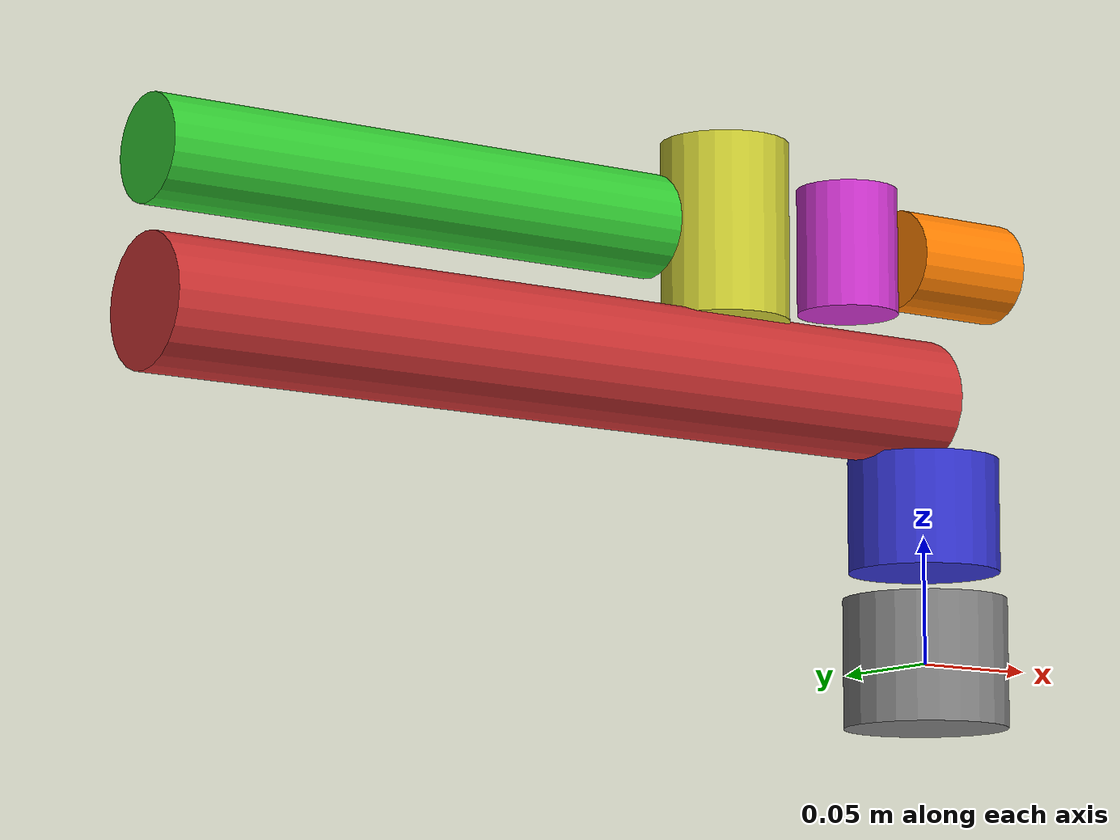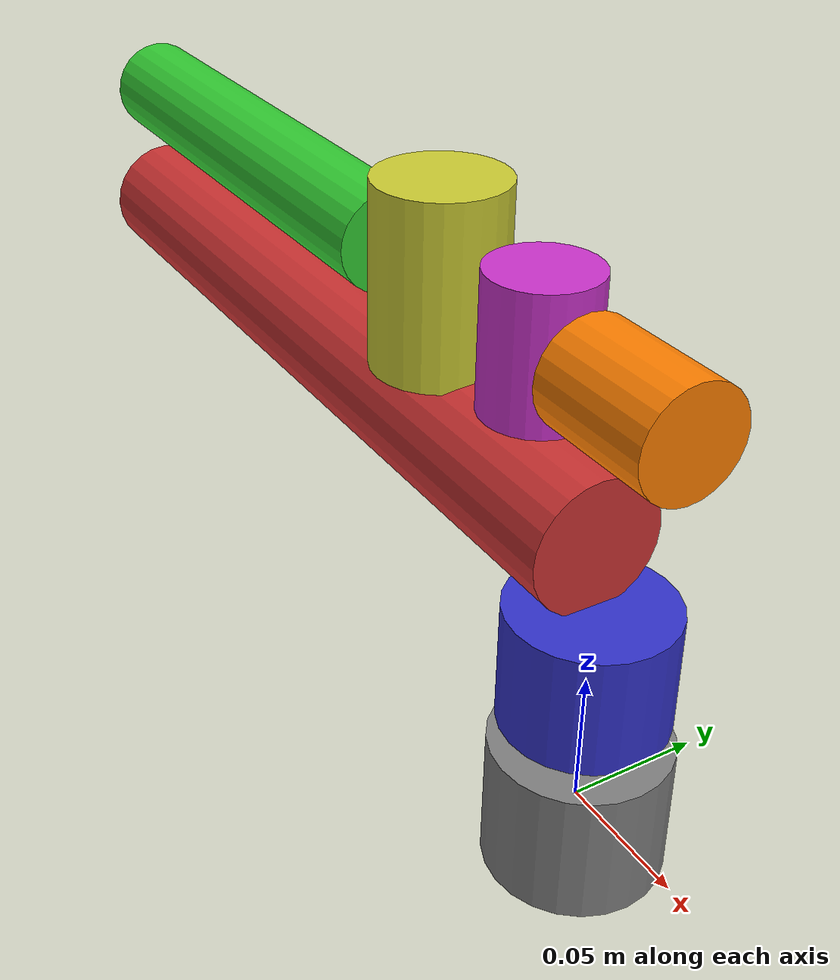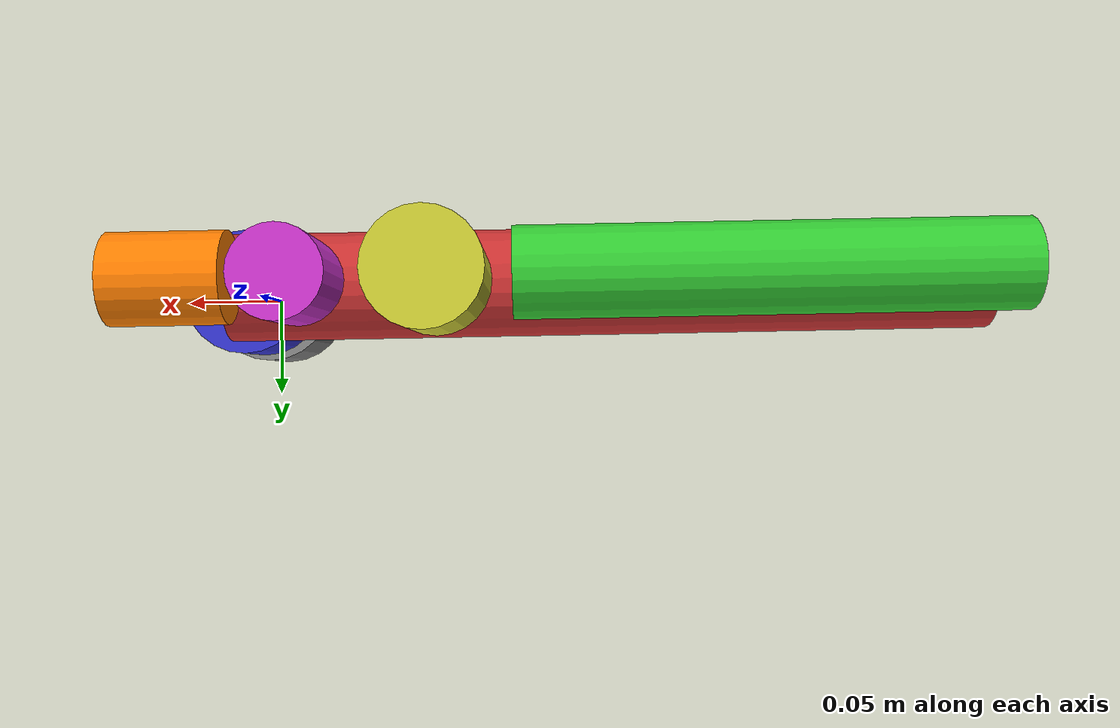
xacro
<?xml version="1.0"?>
<robot xmlns:xacro="http://www.ros.org/wiki/xacro" name="z1_description">

  <!-- ROS2 Control Plugin -->
  <gazebo>
    <plugin filename="libgazebo_ros2_control.so" name="gazebo_ros2_control">
      <parameters>$(find z1_ros2)/config/z1_controllers.yaml</parameters>
    </plugin>
  </gazebo>

  <!-- ROS2 Control Hardware Interface -->
  <ros2_control name="Z1HardwareInterface" type="system">
    <hardware>
      <plugin>gazebo_ros2_control/GazeboSystem</plugin>
    </hardware>

    <joint name="joint1">
      <command_interface name="position">
        <param name="min">-2.618</param>
        <param name="max">2.618</param>
      </command_interface>
      <command_interface name="velocity"/>
      <state_interface name="position"/>
      <state_interface name="velocity"/>
      <state_interface name="effort"/>
    </joint>

    <joint name="joint2">
      <command_interface name="position">
        <param name="min">0.0</param>
        <param name="max">2.967</param>
      </command_interface>
      <command_interface name="velocity"/>
      <state_interface name="position"/>
      <state_interface name="velocity"/>
      <state_interface name="effort"/>
    </joint>

    <joint name="joint3">
      <command_interface name="position">
        <param name="min">-2.88</param>
        <param name="max">0.0</param>
      </command_interface>
      <command_interface name="velocity"/>
      <state_interface name="position"/>
      <state_interface name="velocity"/>
      <state_interface name="effort"/>
    </joint>

    <joint name="joint4">
      <command_interface name="position">
        <param name="min">-1.518</param>
        <param name="max">1.518</param>
      </command_interface>
      <command_interface name="velocity"/>
      <state_interface name="position"/>
      <state_interface name="velocity"/>
      <state_interface name="effort"/>
    </joint>

    <joint name="joint5">
      <command_interface name="position">
        <param name="min">-1.344</param>
        <param name="max">1.344</param>
      </command_interface>
      <command_interface name="velocity"/>
      <state_interface name="position"/>
      <state_interface name="velocity"/>
      <state_interface name="effort"/>
    </joint>

    <joint name="joint6">
      <command_interface name="position">
        <param name="min">-2.793</param>
        <param name="max">2.793</param>
      </command_interface>
      <command_interface name="velocity"/>
      <state_interface name="position"/>
      <state_interface name="velocity"/>
      <state_interface name="effort"/>
    </joint>
  </ros2_control>

  <!-- Base Link -->
  <link name="world"/>
  <joint name="base_static_joint" type="fixed">
    <origin rpy="0 0 0" xyz="0 0 0"/>
    <parent link="world"/>
    <child link="link00"/>
  </joint>

  <!-- Link 00 -->
  <link name="link00">
    <visual>
      <origin rpy="0 0 0" xyz="0 0 0"/>
      <geometry>
        <cylinder length="0.051" radius="0.0325"/>
      </geometry>
      <material name="grey">
        <color rgba="0.5 0.5 0.5 1"/>
      </material>
    </visual>
    <collision>
      <geometry>
        <cylinder length="0.051" radius="0.0325"/>
      </geometry>
      <origin rpy="0 0 0" xyz="0 0 0.0255"/>
    </collision>
    <inertial>
      <origin rpy="0 0 0" xyz="-0.00334984 -0.00013615 0.02495843"/>
      <mass value="0.47247481"/>
      <inertia ixx="0.00037937" ixy="-3.5e-07" ixz="-1.037e-05" iyy="0.00041521" iyz="-9.9e-07" izz="0.00053066"/>
    </inertial>
  </link>

  <!-- Joint 1 -->
  <joint name="joint1" type="revolute">
    <origin rpy="0 0 0" xyz="0 0 0.0585"/>
    <parent link="link00"/>
    <child link="link01"/>
    <axis xyz="0 0 1"/>
    <dynamics damping="1.0" friction="1.0"/>
    <limit effort="30.0" lower="-2.618" upper="2.618" velocity="3.1415"/>
  </joint>

  <!-- Link 01 -->
  <link name="link01">
    <visual>
      <origin rpy="0 0 0" xyz="0 0 0"/>
      <geometry>
        <cylinder length="0.045" radius="0.03"/>
      </geometry>
      <material name="blue">
        <color rgba="0.2 0.2 0.8 1"/>
      </material>
    </visual>
    <inertial>
      <origin rpy="0 0 0" xyz="2.47e-06 -0.00025198 0.02317169"/>
      <mass value="0.67332551"/>
      <inertia ixx="0.00128328" ixy="-6e-08" ixz="-4e-07" iyy="0.00071931" iyz="5e-07" izz="0.00083936"/>
    </inertial>
  </link>

  <!-- Joint 2 -->
  <joint name="joint2" type="revolute">
    <origin rpy="0 0 0" xyz="0 0 0.045"/>
    <parent link="link01"/>
    <child link="link02"/>
    <axis xyz="0 1 0"/>
    <dynamics damping="2.0" friction="2.0"/>
    <limit effort="60.0" lower="0.0" upper="2.967" velocity="3.1415"/>
  </joint>

  <!-- Link 02 -->
  <link name="link02">
    <visual>
      <origin rpy="0 1.5708 0" xyz="-0.175 0 0"/>
      <geometry>
        <cylinder length="0.35" radius="0.025"/>
      </geometry>
      <material name="red">
        <color rgba="0.8 0.2 0.2 1"/>
      </material>
    </visual>
    <collision>
      <geometry>
        <cylinder length="0.35" radius="0.025"/>
      </geometry>
      <origin rpy="0 1.5708 0" xyz="-0.175 0 0"/>
    </collision>
    <inertial>
      <origin rpy="0 0 0" xyz="-0.11012601 0.00240029 0.00158266"/>
      <mass value="1.19132258"/>
      <inertia ixx="0.00102138" ixy="0.00062358" ixz="5.13e-06" iyy="0.02429457" iyz="-2.1e-06" izz="0.02466114"/>
    </inertial>
  </link>

  <!-- Joint 3 -->
  <joint name="joint3" type="revolute">
    <origin rpy="0 0 0" xyz="-0.35 0 0"/>
    <parent link="link02"/>
    <child link="link03"/>
    <axis xyz="0 1 0"/>
    <dynamics damping="1.0" friction="1.0"/>
    <limit effort="30.0" lower="-2.88" upper="0.0" velocity="3.1415"/>
  </joint>

  <!-- Link 03 -->
  <link name="link03">
    <visual>
      <origin rpy="0 1.5708 0" xyz="0.109 0 0.055"/>
      <geometry>
        <cylinder length="0.218" radius="0.02"/>
      </geometry>
      <material name="green">
        <color rgba="0.2 0.8 0.2 1"/>
      </material>
    </visual>
    <collision>
      <geometry>
        <cylinder length="0.218" radius="0.02"/>
      </geometry>
      <origin rpy="0 1.5708 0" xyz="0.109 0 0.055"/>
    </collision>
    <inertial>
      <origin rpy="0 0 0" xyz="0.10609208 -0.00541815 0.03476383"/>
      <mass value="0.83940874"/>
      <inertia ixx="0.00108061" ixy="-8.669e-05" ixz="-0.00208102" iyy="0.00954238" iyz="-1.332e-05" izz="0.00886621"/>
    </inertial>
  </link>

  <!-- Joint 4 -->
  <joint name="joint4" type="revolute">
    <origin rpy="0 0 0" xyz="0.218 0 0.057"/>
    <parent link="link03"/>
    <child link="link04"/>
    <axis xyz="0 1 0"/>
    <dynamics damping="1.0" friction="1.0"/>
    <limit effort="30.0" lower="-1.518" upper="1.518" velocity="3.1415"/>
  </joint>

  <!-- Link 04 -->
  <link name="link04">
    <visual>
      <origin rpy="0 0 0" xyz="0.035 0 0"/>
      <geometry>
        <cylinder length="0.07" radius="0.025"/>
      </geometry>
      <material name="yellow">
        <color rgba="0.8 0.8 0.2 1"/>
      </material>
    </visual>
    <collision>
      <geometry>
        <cylinder length="0.07" radius="0.025"/>
      </geometry>
      <origin rpy="0 0 0" xyz="0.035 0 0"/>
    </collision>
    <inertial>
      <origin rpy="0 0 0" xyz="0.04366681 0.00364738 -0.00170192"/>
      <mass value="0.56404563"/>
      <inertia ixx="0.00031576" ixy="8.13e-05" ixz="4.091e-05" iyy="0.00092996" iyz="-5.96e-06" izz="0.00097912"/>
    </inertial>
  </link>

  <!-- Joint 5 -->
  <joint name="joint5" type="revolute">
    <origin rpy="0 0 0" xyz="0.07 0.0 0.0"/>
    <parent link="link04"/>
    <child link="link05"/>
    <axis xyz="0 0 1"/>
    <dynamics damping="1.0" friction="1.0"/>
    <limit effort="30.0" lower="-1.344" upper="1.344" velocity="3.1415"/>
  </joint>

  <!-- Link 05 -->
  <link name="link05">
    <visual>
      <origin rpy="0 0 0" xyz="0.025 0 0"/>
      <geometry>
        <cylinder length="0.05" radius="0.02"/>
      </geometry>
      <material name="purple">
        <color rgba="0.8 0.2 0.8 1"/>
      </material>
    </visual>
    <inertial>
      <origin rpy="0 0 0" xyz="0.03121533 0.0 0.00646316"/>
      <mass value="0.38938492"/>
      <inertia ixx="0.00017605" ixy="4e-07" ixz="5.689e-05" iyy="0.00055896" iyz="-1.3e-07" izz="0.0005386"/>
    </inertial>
  </link>

  <!-- Joint 6 -->
  <joint name="joint6" type="revolute">
    <origin rpy="0 0 0" xyz="0.0492 0.0 0.0"/>
    <parent link="link05"/>
    <child link="link06"/>
    <axis xyz="1 0 0"/>
    <dynamics damping="1.0" friction="1.0"/>
    <limit effort="30.0" lower="-2.793" upper="2.793" velocity="3.1415"/>
  </joint>

  <!-- Link 06 (End Effector) -->
  <link name="link06">
    <visual>
      <origin rpy="0 1.5708 0" xyz="0.025 0 0"/>
      <geometry>
        <cylinder length="0.05" radius="0.02"/>
      </geometry>
      <material name="orange">
        <color rgba="1.0 0.5 0.0 1"/>
      </material>
    </visual>
    <collision>
      <geometry>
        <cylinder length="0.05" radius="0.02"/>
      </geometry>
      <origin rpy="0 1.5708 0" xyz="0.025 0 0"/>
    </collision>
    <inertial>
      <origin rpy="0 0 0" xyz="0.0241569 -0.00017355 -0.00143876"/>
      <mass value="0.28875807"/>
      <inertia ixx="0.00018328" ixy="1.22e-06" ixz="5.4e-07" iyy="0.0001475" iyz="8e-08" izz="0.0001468"/>
    </inertial>
  </link>

</robot>
